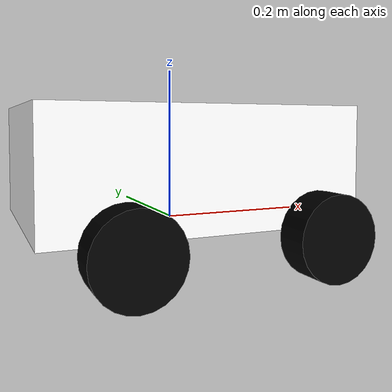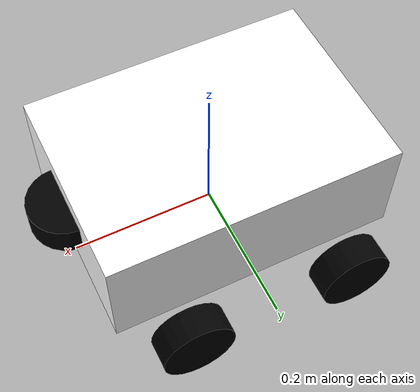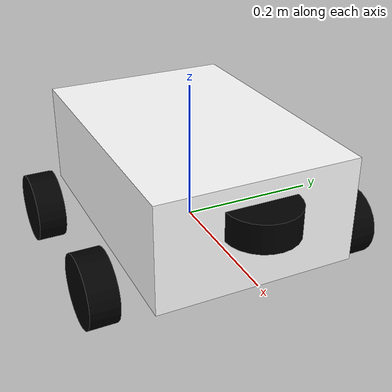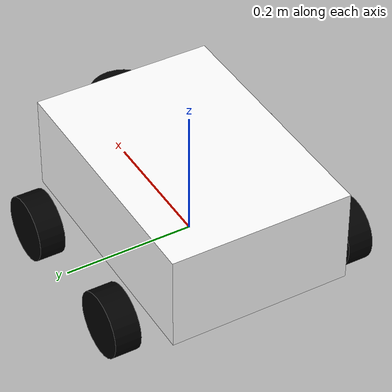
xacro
<?xml version="1.0"?>
<robot xmlns:xacro="http://www.ros.org/wiki/xacro" name="titan">

    <xacro:include filename="robot_core.xacro" />

    <xacro:include filename="lidar.xacro" />

    <xacro:include filename="ros2_control.xacro" />

    <xacro:include filename="gazebo_control.xacro" />

</robot>

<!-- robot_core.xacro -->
<robot xmlns:xacro="http://www.ros.org/wiki/xacro">

    <material name="white"> <color rgba="1 1 1 1" /> </material>
    <material name="blue"> <color rgba="0.2 0.2 1 1" /> </material>
    <material name="black"> <color rgba="0 0 0 1" /> </material>

    <xacro:macro name="inertial_box" params="mass x y z *origin">
        <inertial>
            <xacro:insert_block name="origin"/>
            <mass value="${mass}" />
            <inertia ixx="${(1/12) * mass * (y*y + z*z)}" ixy="0.0" ixz="0.0"
                     iyy="${(1/12) * mass * (x*x + z*z)}" iyz="0.0"
                     izz="${(1/12) * mass * (x*x + y*y)}" />
        </inertial>
    </xacro:macro>

    <xacro:macro name="inertial_cylinder" params="mass length radius *origin">
        <inertial>
            <xacro:insert_block name="origin"/>
            <mass value="${mass}" />
            <inertia ixx="${(1/12) * mass * (3*radius*radius + length*length)}" ixy="0.0" ixz="0.0"
                     iyy="${(1/12) * mass * (3*radius*radius + length*length)}" iyz="0.0"
                     izz="${(1/2) * mass * (radius*radius)}" />
        </inertial>
    </xacro:macro>

    <link name="base_link"></link>

    <joint name="chassis_joint" type="fixed">
        <parent link="base_link"/>
        <child link="chassis"/>
        <origin xyz="0 0 0"/>
    </joint>

    <link name="chassis">
        <visual>
            <origin xyz="0 0 0.075"/>
            <geometry> <box size="0.40 0.28 0.15"/> </geometry>
            <material name="white"/>
        </visual>
        <collision>
            <origin xyz="0 0 0.075"/>
            <geometry> <box size="0.40 0.28 0.15"/> </geometry>
        </collision>
        <xacro:inertial_box mass="0.5" x="0.40" y="0.28" z="0.15">
            <origin xyz="0 0 0.075" rpy="0 0 0"/>
        </xacro:inertial_box>
    </link>

    <xacro:macro name="wheel" params="prefix x_reflect y_reflect">
        <joint name="${prefix}_wheel_joint" type="continuous">
            <parent link="base_link"/>
            <child link="${prefix}_wheel"/>
            <origin xyz="${x_reflect*0.115} ${y_reflect*0.19} 0" rpy="${pi/2} 0 0"/>
            <axis xyz="0 0 -1"/>
        </joint>

        <link name="${prefix}_wheel">
            <visual>
                <geometry> <cylinder radius="0.05" length="0.04"/> </geometry>
                <material name="black"/>
            </visual>
            <collision>
                <geometry> <cylinder radius="0.05" length="0.04"/> </geometry>
            </collision>
            <xacro:inertial_cylinder mass="0.1" length="0.04" radius="0.05">
                <origin xyz="0 0 0" rpy="0 0 0"/>
            </xacro:inertial_cylinder>
        </link>
    </xacro:macro>

    <xacro:wheel prefix="front_left" x_reflect="1" y_reflect="1" />
    <xacro:wheel prefix="front_right" x_reflect="1" y_reflect="-1" />
    <xacro:wheel prefix="back_left" x_reflect="-1" y_reflect="1" />
    <xacro:wheel prefix="back_right" x_reflect="-1" y_reflect="-1" />

</robot>

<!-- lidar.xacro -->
<robot xmlns:xacro="http://www.ros.org/wiki/xacro">

    <joint name="laser_joint" type="fixed">
        <parent link="chassis"/>
        <child link="laser_frame"/>
        <origin xyz="0.2 0 0.1" rpy="0 0 3.14159"/>
    </joint>

    <link name="laser_frame">
        <visual>
            <geometry>
                <cylinder radius="0.05" length="0.04"/>
            </geometry>
            <material name="black"/>
        </visual>
    </link>

    <gazebo reference="laser_frame">
        <sensor name="laser" type="gpu_lidar">
            <pose>0 0 0 0 0 0</pose>
            <visualize>true</visualize>
            <update_rate>10</update_rate>
            <lidar>
                <scan>
                    <horizontal>
                        <samples>360</samples>
                        <min_angle>-3.14</min_angle>
                        <max_angle>3.14</max_angle>
                    </horizontal>
                </scan>
                <range>
                    <min>0.3</min>
                    <max>12</max>
                </range>
            </lidar>
            <topic>scan</topic>
            <gz_frame_id>laser_frame</gz_frame_id>
        </sensor>
    </gazebo>
</robot>
